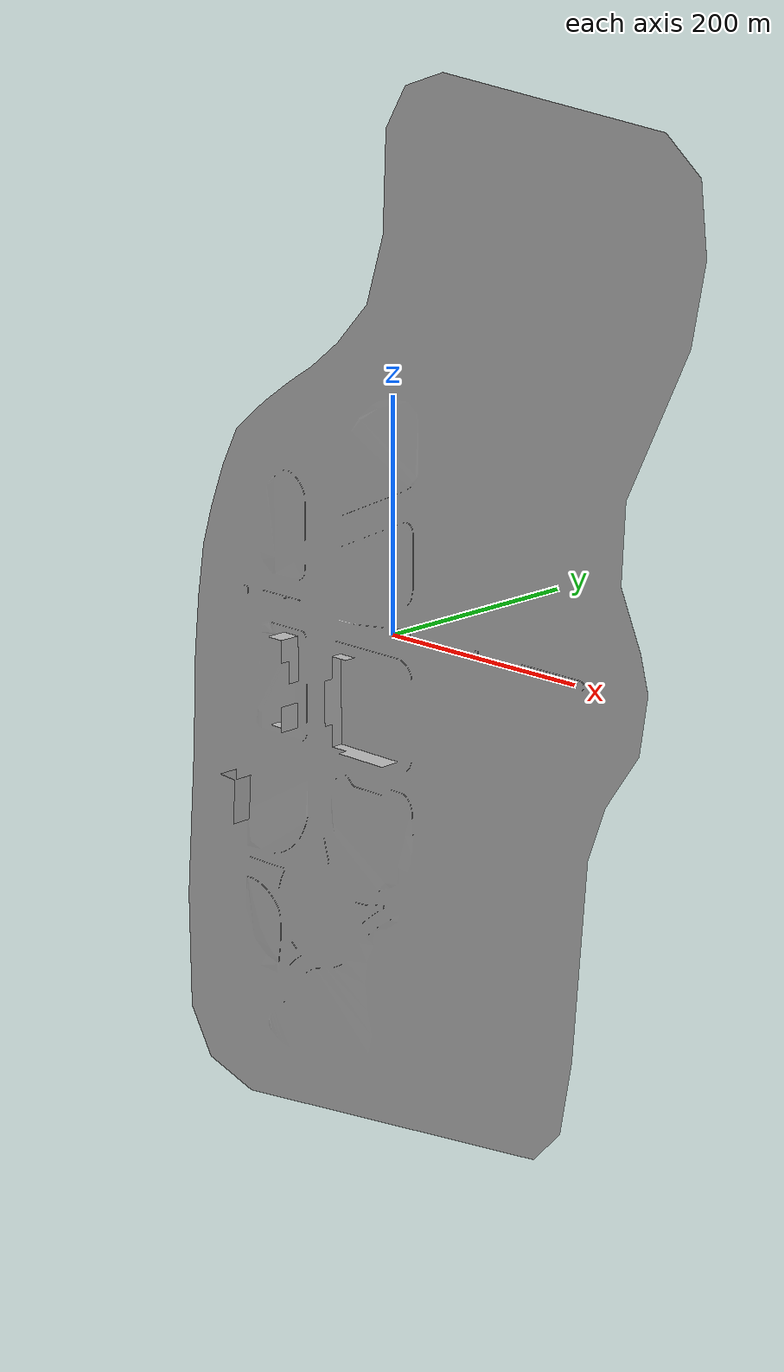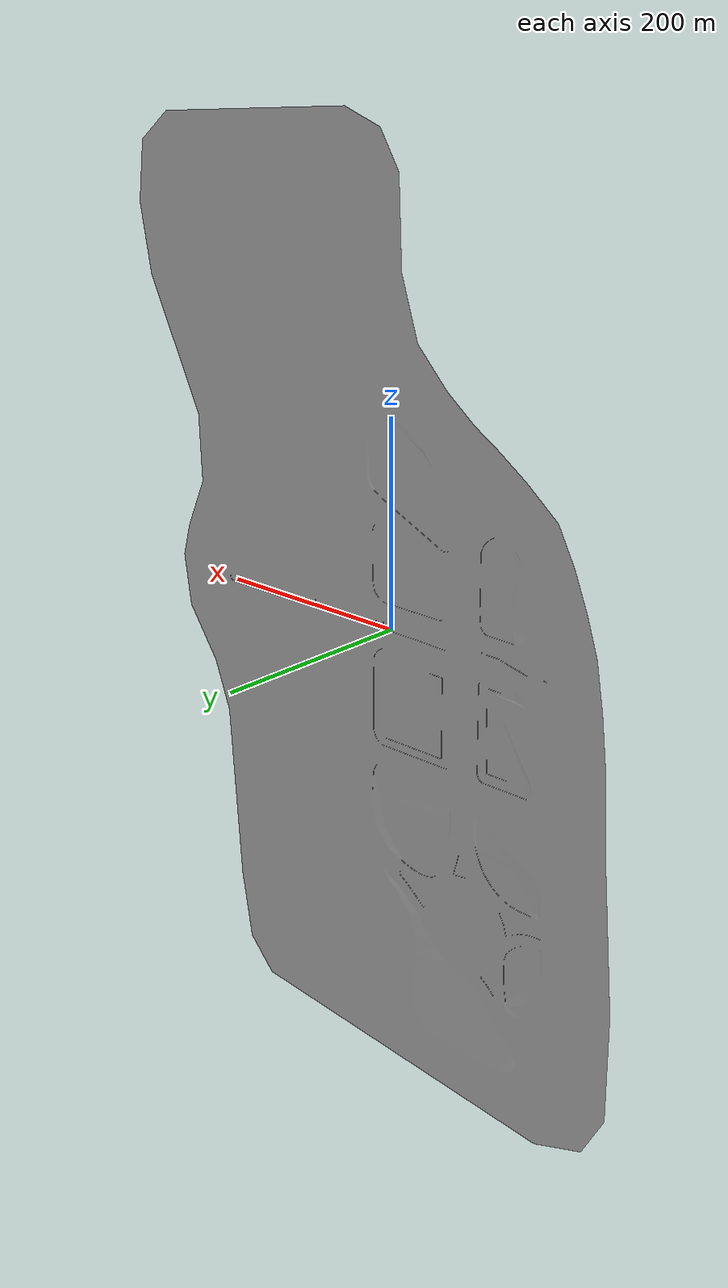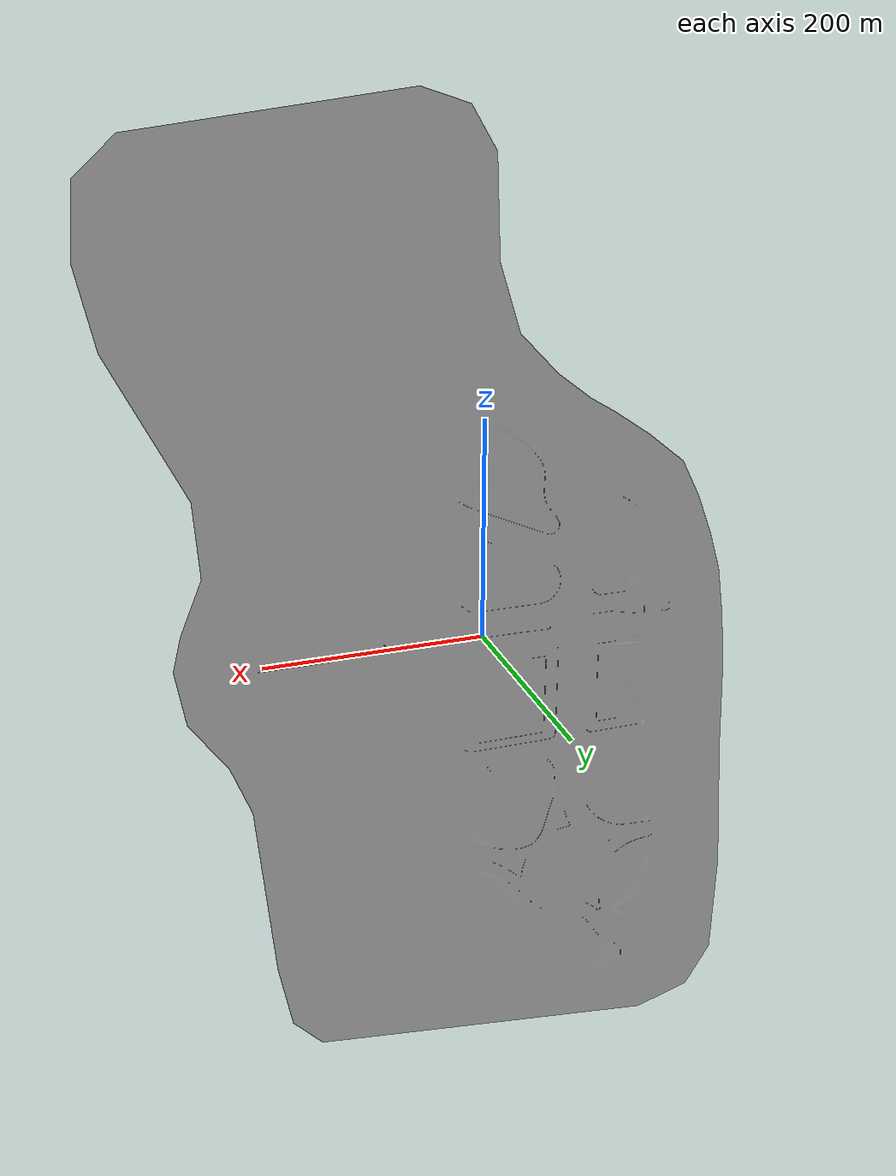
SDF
<?xml version="1.0" ?>
<sdf version="1.5">
  <model name="mcity">
    <static>true</static>
    <link name="link">
      <collision name="collision">
        <geometry>
          <mesh>
            <uri>model://mcity/meshes/mcity.dae</uri>
            <scale>0.254 0.254 0.254</scale>
          </mesh>
        </geometry>
      </collision>
      <visual name="visual">
        <geometry>
          <mesh>
            <uri>model://mcity/meshes/mcity.dae</uri>
            <scale>0.254 0.254 0.254</scale>
          </mesh>
        </geometry>
      </visual>
    </link>
  </model>
</sdf>
